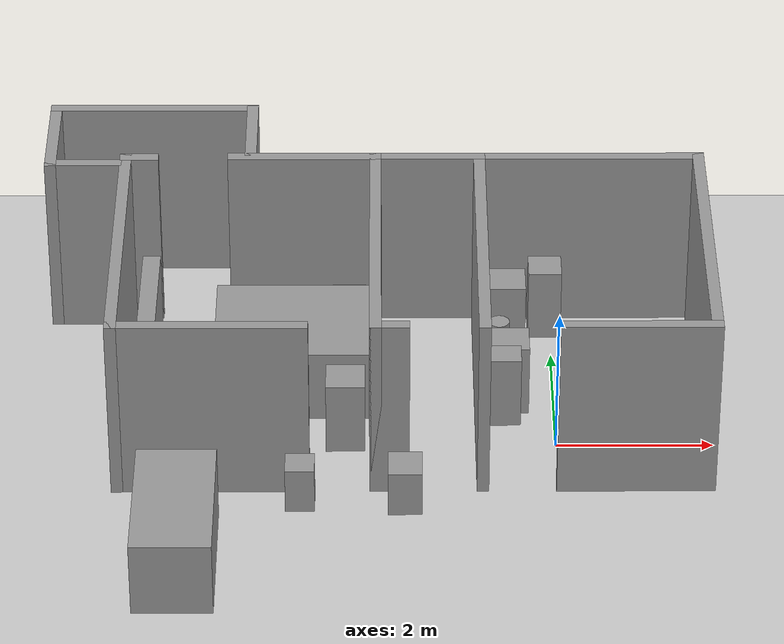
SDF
<sdf version="1.6">
 <world name="default">
  <model name="ground_plane">
   <static>1</static>
   <link name="link">
    <collision name="collision">
     <geometry><plane><normal>0 0 1</normal><size>100 100</size></plane></geometry>
     <surface><friction><ode><mu>100</mu><mu2>50</mu2></ode></friction></surface>
    </collision>
    <visual name="visual">
     <cast_shadows>0</cast_shadows>
     <geometry><plane><normal>0 0 1</normal><size>100 100</size></plane></geometry>
     <material>
      <script><uri>file://media/materials/scripts/gazebo.material</uri><name>Gazebo/Grey</name></script>
     </material>
    </visual>
   </link>
  </model>
  <model name="cma_escritorio">
   <pose>-1.83039 1.03024 0 0 -0 0</pose>
   <link name="Wall_11">
    <collision name="Wall_11_Collision">
     <geometry><box><size>2 0.15 2.5</size></box></geometry>
     <pose>0 0 1.25 0 -0 0</pose>
    </collision>
    <visual name="Wall_11_Visual">
     <pose>0 0 1.25 0 -0 0</pose>
     <geometry><box><size>2 0.15 2.5</size></box></geometry>
     <material>
      <script><uri>file://media/materials/scripts/gazebo.material</uri><name>Gazebo/Grey</name></script>
      <ambient>1 1 1 1</ambient>
     </material>
    </visual>
    <pose>-1.4 1.93 0 0 -0 3.14159</pose>
   </link>
   <link name="Wall_2">
    <collision name="Wall_2_Collision">
     <geometry><box><size>4 0.15 2.5</size></box></geometry>
     <pose>0 0 1.25 0 -0 0</pose>
    </collision>
    <visual name="Wall_2_Visual">
     <pose>0 0 1.25 0 -0 0</pose>
     <geometry><box><size>4 0.15 2.5</size></box></geometry>
     <material>
      <script><uri>file://media/materials/scripts/gazebo.material</uri><name>Gazebo/Grey</name></script>
      <ambient>1 1 1 1</ambient>
     </material>
    </visual>
    <pose>0.875 0.005 0 0 -0 1.5708</pose>
   </link>
   <link name="Wall_25">
    <collision name="Wall_25_Collision">
     <geometry><box><size>2.5 0.15 2.5</size></box></geometry>
     <pose>0 0 1.25 0 -0 0</pose>
    </collision>
    <visual name="Wall_25_Visual">
     <pose>0 0 1.25 0 -0 0</pose>
     <geometry><box><size>2.5 0.15 2.5</size></box></geometry>
     <material>
      <script><uri>file://media/materials/scripts/gazebo.material</uri><name>Gazebo/Grey</name></script>
      <ambient>1 1 1 1</ambient>
     </material>
    </visual>
    <pose>-2.55 -1.93 0 0 -0 3.14159</pose>
   </link>
   <link name="Wall_26">
    <collision name="Wall_26_Collision">
     <geometry><box><size>4 0.15 2.5</size></box></geometry>
     <pose>0 0 1.25 0 -0 0</pose>
    </collision>
    <visual name="Wall_26_Visual">
     <pose>0 0 1.25 0 -0 0</pose>
     <geometry><box><size>4 0.15 2.5</size></box></geometry>
     <material>
      <script><uri>file://media/materials/scripts/gazebo.material</uri><name>Gazebo/Grey</name></script>
      <ambient>1 1 1 1</ambient>
     </material>
    </visual>
    <pose>-3.725 -0.005 0 0 -0 1.5708</pose>
   </link>
   <link name="Wall_27">
    <collision name="Wall_27_Collision">
     <geometry><box><size>0.5 0.15 2.5</size></box></geometry>
     <pose>0 0 1.25 0 -0 0</pose>
    </collision>
    <visual name="Wall_27_Visual">
     <pose>0 0 1.25 0 -0 0</pose>
     <geometry><box><size>0.5 0.15 2.5</size></box></geometry>
     <material>
      <script><uri>file://media/materials/scripts/gazebo.material</uri><name>Gazebo/Grey</name></script>
      <ambient>1 1 1 1</ambient>
     </material>
    </visual>
    <pose>-3.55 1.92 0 0 -0 0</pose>
   </link>
   <link name="Wall_3">
    <collision name="Wall_3_Collision">
     <geometry><box><size>3 0.15 2.5</size></box></geometry>
     <pose>0 0 1.25 0 -0 0</pose>
    </collision>
    <visual name="Wall_3_Visual">
     <pose>0 0 1.25 0 -0 0</pose>
     <geometry><box><size>3 0.15 2.5</size></box></geometry>
     <material>
      <script><uri>file://media/materials/scripts/gazebo.material</uri><name>Gazebo/Grey</name></script>
      <ambient>1 1 1 1</ambient>
     </material>
    </visual>
    <pose>2.3 1.93 0 0 -0 0</pose>
   </link>
   <link name="Wall_4">
    <collision name="Wall_4_Collision">
     <geometry><box><size>4 0.15 2.5</size></box></geometry>
     <pose>0 0 1.25 0 -0 0</pose>
    </collision>
    <visual name="Wall_4_Visual">
     <pose>0 0 1.25 0 -0 0</pose>
     <geometry><box><size>4 0.15 2.5</size></box></geometry>
     <material>
      <script><uri>file://media/materials/scripts/gazebo.material</uri><name>Gazebo/Grey</name></script>
      <ambient>1 1 1 1</ambient>
     </material>
    </visual>
    <pose>3.725 0.005 0 0 0 -1.5708</pose>
   </link>
   <link name="Wall_5">
    <collision name="Wall_5_Collision">
     <geometry><box><size>2 0.15 2.5</size></box></geometry>
     <pose>0 0 1.25 0 -0 0</pose>
    </collision>
    <visual name="Wall_5_Visual">
     <pose>0 0 1.25 0 -0 0</pose>
     <geometry><box><size>2 0.15 2.5</size></box></geometry>
     <material>
      <script><uri>file://media/materials/scripts/gazebo.material</uri><name>Gazebo/Grey</name></script>
      <ambient>1 1 1 1</ambient>
     </material>
    </visual>
    <pose>2.8 -1.92 0 0 -0 3.14159</pose>
   </link>
   <link name="Wall_7">
    <collision name="Wall_7_Collision">
     <geometry><box><size>1.5 0.15 2.5</size></box></geometry>
     <pose>0 0 1.25 0 -0 0</pose>
    </collision>
    <visual name="Wall_7_Visual">
     <pose>0 0 1.25 0 -0 0</pose>
     <geometry><box><size>1.5 0.15 2.5</size></box></geometry>
     <material>
      <script><uri>file://media/materials/scripts/gazebo.material</uri><name>Gazebo/Grey</name></script>
      <ambient>1 1 1 1</ambient>
     </material>
    </visual>
    <pose>0.2 1.93 0 0 -0 3.14159</pose>
   </link>
   <link name="Wall_8">
    <collision name="Wall_8_Collision">
     <geometry><box><size>4 0.15 2.5</size></box></geometry>
     <pose>0 0 1.25 0 -0 0</pose>
    </collision>
    <visual name="Wall_8_Visual">
     <pose>0 0 1.25 0 -0 0</pose>
     <geometry><box><size>4 0.15 2.5</size></box></geometry>
     <material>
      <script><uri>file://media/materials/scripts/gazebo.material</uri><name>Gazebo/Grey</name></script>
      <ambient>1 1 1 1</ambient>
     </material>
    </visual>
    <pose>-0.475 0.005 0 0 0 -1.5708</pose>
   </link>
   <link name="Wall_9">
    <collision name="Wall_9_Collision">
     <geometry><box><size>0.5 0.15 2.5</size></box></geometry>
     <pose>0 0 1.25 0 -0 0</pose>
    </collision>
    <visual name="Wall_9_Visual">
     <pose>0 0 1.25 0 -0 0</pose>
     <geometry><box><size>0.5 0.15 2.5</size></box></geometry>
     <material>
      <script><uri>file://media/materials/scripts/gazebo.material</uri><name>Gazebo/Grey</name></script>
      <ambient>1 1 1 1</ambient>
     </material>
    </visual>
    <pose>-0.3 -1.92 0 0 -0 0</pose>
   </link>
   <static>1</static>
  </model>
  <model name="cma_banheiro">
   <pose>-5.22928 3.4871 0 0 -0 0</pose>
   <link name="Wall_0">
    <collision name="Wall_0_Collision">
     <geometry><box><size>1 0.15 2.5</size></box></geometry>
     <pose>0 0 1.25 0 -0 0</pose>
    </collision>
    <visual name="Wall_0_Visual">
     <pose>0 0 1.25 0 -0 0</pose>
     <geometry><box><size>1 0.15 2.5</size></box></geometry>
     <material>
      <script><uri>file://media/materials/scripts/gazebo.material</uri><name>Gazebo/Grey</name></script>
      <ambient>1 1 1 1</ambient>
     </material>
    </visual>
    <pose>-0.875 -0.675 0 0 -0 3.14159</pose>
   </link>
   <link name="Wall_1">
    <collision name="Wall_1_Collision">
     <geometry><box><size>1.5 0.15 2.5</size></box></geometry>
     <pose>0 0 1.25 0 -0 0</pose>
    </collision>
    <visual name="Wall_1_Visual">
     <pose>0 0 1.25 0 -0 0</pose>
     <geometry><box><size>1.5 0.15 2.5</size></box></geometry>
     <material>
      <script><uri>file://media/materials/scripts/gazebo.material</uri><name>Gazebo/Grey</name></script>
      <ambient>1 1 1 1</ambient>
     </material>
    </visual>
    <pose>-1.3 0 0 0 -0 1.5708</pose>
   </link>
   <link name="Wall_2">
    <collision name="Wall_2_Collision">
     <geometry><box><size>2.75 0.15 2.5</size></box></geometry>
     <pose>0 0 1.25 0 -0 0</pose>
    </collision>
    <visual name="Wall_2_Visual">
     <pose>0 0 1.25 0 -0 0</pose>
     <geometry><box><size>2.75 0.15 2.5</size></box></geometry>
     <material>
      <script><uri>file://media/materials/scripts/gazebo.material</uri><name>Gazebo/Grey</name></script>
      <ambient>1 1 1 1</ambient>
     </material>
    </visual>
    <pose>0 0.675 0 0 -0 0</pose>
   </link>
   <link name="Wall_4">
    <collision name="Wall_4_Collision">
     <geometry><box><size>1.25 0.15 2.5</size></box></geometry>
     <pose>0 0 1.25 0 -0 0</pose>
    </collision>
    <visual name="Wall_4_Visual">
     <pose>0 0 1.25 0 -0 0</pose>
     <geometry><box><size>1.25 0.15 2.5</size></box></geometry>
     <material>
      <script><uri>file://media/materials/scripts/gazebo.material</uri><name>Gazebo/Grey</name></script>
      <ambient>1 1 1 1</ambient>
     </material>
    </visual>
    <pose>1.3 0.125 0 0 0 -1.5708</pose>
   </link>
   <static>1</static>
  </model>
  <model name="cma_gaveteiro_pequeno_0">
   <link name="link_0">
    <pose>0.256174 1.25055 0.5 0 -0 0</pose>
    <inertial>
     <mass>0.187186</mass>
     <inertia>
      <ixx>0.01851</ixx>
      <ixy>0</ixy>
      <ixz>0</ixz>
      <iyy>0.0185276</iyy>
      <iyz>0</iyz>
      <izz>0.00583981</izz>
     </inertia>
    </inertial>
    <visual name="visual">
     <geometry><box><size>0.433317 0.432002 1</size></box></geometry>
     <material>
      <lighting>1</lighting>
      <script><uri>file://media/materials/scripts/gazebo.material</uri><name>Gazebo/Grey</name></script>
      <ambient>0.3 0.3 0.3 1</ambient>
      <diffuse>0.7 0.7 0.7 1</diffuse>
      <specular>0.01 0.01 0.01 1</specular>
      <emissive>0 0 0 1</emissive>
     </material>
    </visual>
    <collision name="collision">
     <geometry><box><size>0.433317 0.432002 1</size></box></geometry>
     <surface>
      <friction>
       <ode><mu>1</mu><mu2>1</mu2><fdir1>0 0 0</fdir1><slip1>0</slip1><slip2>0</slip2></ode>
       <torsional>
        <coefficient>1</coefficient>
        <patch_radius>0</patch_radius>
        <surface_radius>0</surface_radius>
        <use_patch_radius>1</use_patch_radius>
        <ode><slip>0</slip></ode>
       </torsional>
      </friction>
      <bounce><restitution_coefficient>0</restitution_coefficient><threshold>1e+06</threshold></bounce>
      <contact>
       <collide_without_contact>0</collide_without_contact>
       <collide_without_contact_bitmask>1</collide_without_contact_bitmask>
       <collide_bitmask>1</collide_bitmask>
       <ode>
        <soft_cfm>0</soft_cfm>
        <soft_erp>0.2</soft_erp>
        <kp>1e+13</kp>
        <kd>1</kd>
        <max_vel>0.01</max_vel>
        <min_depth>0</min_depth>
       </ode>
       <bullet>
        <split_impulse>1</split_impulse>
        <split_impulse_penetration_threshold>-0.01</split_impulse_penetration_threshold>
        <soft_cfm>0</soft_cfm>
        <soft_erp>0.2</soft_erp>
        <kp>1e+13</kp>
        <kd>1</kd>
       </bullet>
      </contact>
     </surface>
    </collision>
   </link>
   <static>0</static>
   <pose>-0.336048 1.39511 -1e-06 1e-06 -3e-06 -5.7e-05</pose>
  </model>
  <model name="cma_gaveteiro">
   <link name="link_0">
    <pose>-0 4e-06 0 0 -0 0</pose>
    <inertial>
     <mass>0.245086</mass>
     <inertia>
      <ixx>0.025418</ixx>
      <ixy>0</ixy>
      <ixz>0</ixz>
      <iyy>0.0254411</iyy>
      <iyz>0</iyz>
      <izz>0.0100113</izz>
     </inertia>
    </inertial>
    <visual name="visual">
     <geometry><box><size>0.495657 0.494491 1</size></box></geometry>
     <material>
      <lighting>1</lighting>
      <script><uri>file://media/materials/scripts/gazebo.material</uri><name>Gazebo/Grey</name></script>
      <ambient>0.3 0.3 0.3 1</ambient>
      <diffuse>0.7 0.7 0.7 1</diffuse>
      <specular>0.01 0.01 0.01 1</specular>
      <emissive>0 0 0 1</emissive>
     </material>
    </visual>
    <collision name="collision">
     <geometry><box><size>0.495657 0.494491 1</size></box></geometry>
     <surface>
      <friction>
       <ode><mu>1</mu><mu2>1</mu2><fdir1>0 0 0</fdir1><slip1>0</slip1><slip2>0</slip2></ode>
       <torsional>
        <coefficient>1</coefficient>
        <patch_radius>0</patch_radius>
        <surface_radius>0</surface_radius>
        <use_patch_radius>1</use_patch_radius>
        <ode><slip>0</slip></ode>
       </torsional>
      </friction>
      <bounce><restitution_coefficient>0</restitution_coefficient><threshold>1e+06</threshold></bounce>
      <contact>
       <collide_without_contact>0</collide_without_contact>
       <collide_without_contact_bitmask>1</collide_without_contact_bitmask>
       <collide_bitmask>1</collide_bitmask>
       <ode>
        <soft_cfm>0</soft_cfm>
        <soft_erp>0.2</soft_erp>
        <kp>1e+13</kp>
        <kd>1</kd>
        <max_vel>0.01</max_vel>
        <min_depth>0</min_depth>
       </ode>
       <bullet>
        <split_impulse>1</split_impulse>
        <split_impulse_penetration_threshold>-0.01</split_impulse_penetration_threshold>
        <soft_cfm>0</soft_cfm>
        <soft_erp>0.2</soft_erp>
        <kp>1e+13</kp>
        <kd>1</kd>
       </bullet>
      </contact>
     </surface>
    </collision>
   </link>
   <static>0</static>
   <pose>-0.591995 2.32621 0.499996 -6e-06 -5e-06 0.000353</pose>
  </model>
  <model name="cma_gaveteiro_0">
   <link name="link_0">
    <pose>-0 4e-06 0 0 -0 0</pose>
    <inertial>
     <mass>0.245086</mass>
     <inertia>
      <ixx>0.025418</ixx>
      <ixy>0</ixy>
      <ixz>0</ixz>
      <iyy>0.0254411</iyy>
      <iyz>0</iyz>
      <izz>0.0100113</izz>
     </inertia>
    </inertial>
    <visual name="visual">
     <geometry><box><size>0.495657 0.494491 1</size></box></geometry>
     <material>
      <lighting>1</lighting>
      <script><uri>file://media/materials/scripts/gazebo.material</uri><name>Gazebo/Grey</name></script>
      <ambient>0.3 0.3 0.3 1</ambient>
      <diffuse>0.7 0.7 0.7 1</diffuse>
      <specular>0.01 0.01 0.01 1</specular>
      <emissive>0 0 0 1</emissive>
     </material>
    </visual>
    <collision name="collision">
     <geometry><box><size>0.495657 0.494491 1</size></box></geometry>
     <surface>
      <friction>
       <ode><mu>1</mu><mu2>1</mu2><fdir1>0 0 0</fdir1><slip1>0</slip1><slip2>0</slip2></ode>
       <torsional>
        <coefficient>1</coefficient>
        <patch_radius>0</patch_radius>
        <surface_radius>0</surface_radius>
        <use_patch_radius>1</use_patch_radius>
        <ode><slip>0</slip></ode>
       </torsional>
      </friction>
      <bounce><restitution_coefficient>0</restitution_coefficient><threshold>1e+06</threshold></bounce>
      <contact>
       <collide_without_contact>0</collide_without_contact>
       <collide_without_contact_bitmask>1</collide_without_contact_bitmask>
       <collide_bitmask>1</collide_bitmask>
       <ode>
        <soft_cfm>0</soft_cfm>
        <soft_erp>0.2</soft_erp>
        <kp>1e+13</kp>
        <kd>1</kd>
        <max_vel>0.01</max_vel>
        <min_depth>0</min_depth>
       </ode>
       <bullet>
        <split_impulse>1</split_impulse>
        <split_impulse_penetration_threshold>-0.01</split_impulse_penetration_threshold>
        <soft_cfm>0</soft_cfm>
        <soft_erp>0.2</soft_erp>
        <kp>1e+13</kp>
        <kd>1</kd>
       </bullet>
      </contact>
     </surface>
    </collision>
   </link>
   <static>0</static>
   <pose>-0.581078 0.950883 0.5 0 -0 0.003045</pose>
  </model>
  <model name="cma_lixo_0">
   <link name="link_1">
    <pose>0.882962 1.81586 0.5 0 -0 0</pose>
    <inertial>
     <mass>0.0687644</mass>
     <inertia>
      <ixx>0.00602588</ixx>
      <ixy>0</ixy>
      <ixz>0</ixz>
      <iyy>0.00602588</iyy>
      <iyz>0</iyz>
      <izz>0.000591068</izz>
     </inertia>
    </inertial>
    <visual name="visual">
     <geometry><cylinder><radius>0.131112</radius><length>1</length></cylinder></geometry>
     <material>
      <lighting>1</lighting>
      <script><uri>file://media/materials/scripts/gazebo.material</uri><name>Gazebo/Grey</name></script>
      <ambient>0.3 0.3 0.3 1</ambient>
      <diffuse>0.7 0.7 0.7 1</diffuse>
      <specular>0.01 0.01 0.01 1</specular>
      <emissive>0 0 0 1</emissive>
     </material>
    </visual>
    <collision name="collision">
     <geometry><cylinder><radius>0.131112</radius><length>1</length></cylinder></geometry>
     <surface>
      <friction>
       <ode><mu>1</mu><mu2>1</mu2><fdir1>0 0 0</fdir1><slip1>0</slip1><slip2>0</slip2></ode>
       <torsional>
        <coefficient>1</coefficient>
        <patch_radius>0</patch_radius>
        <surface_radius>0</surface_radius>
        <use_patch_radius>1</use_patch_radius>
        <ode><slip>0</slip></ode>
       </torsional>
      </friction>
      <bounce><restitution_coefficient>0</restitution_coefficient><threshold>1e+06</threshold></bounce>
      <contact>
       <collide_without_contact>0</collide_without_contact>
       <collide_without_contact_bitmask>1</collide_without_contact_bitmask>
       <collide_bitmask>1</collide_bitmask>
       <ode>
        <soft_cfm>0</soft_cfm>
        <soft_erp>0.2</soft_erp>
        <kp>1e+13</kp>
        <kd>1</kd>
        <max_vel>0.01</max_vel>
        <min_depth>0</min_depth>
       </ode>
       <bullet>
        <split_impulse>1</split_impulse>
        <split_impulse_penetration_threshold>-0.01</split_impulse_penetration_threshold>
        <soft_cfm>0</soft_cfm>
        <soft_erp>0.2</soft_erp>
        <kp>1e+13</kp>
        <kd>1</kd>
       </bullet>
      </contact>
     </surface>
    </collision>
   </link>
   <static>0</static>
   <pose>-1.59037 -0.469415 0 0 -0 0.000705</pose>
  </model>
  <model name="cma_sofa2">
   <link name="link_0">
    <pose>-4.668 -2.00601 0.5 0 -0 0</pose>
    <inertial>
     <mass>1.98683</mass>
     <inertia>
      <ixx>0.819149</ixx>
      <ixy>0</ixy>
      <ixz>0</ixz>
      <iyy>0.331138</iyy>
      <iyz>0</iyz>
      <izz>0.819149</izz>
     </inertia>
    </inertial>
    <visual name="visual">
     <geometry><box><size>1 1.98682 1</size></box></geometry>
     <material>
      <lighting>1</lighting>
      <script><uri>file://media/materials/scripts/gazebo.material</uri><name>Gazebo/Grey</name></script>
      <ambient>0.3 0.3 0.3 1</ambient>
      <diffuse>0.7 0.7 0.7 1</diffuse>
      <specular>0.01 0.01 0.01 1</specular>
      <emissive>0 0 0 1</emissive>
     </material>
    </visual>
    <collision name="collision">
     <geometry><box><size>1 1.98682 1</size></box></geometry>
     <surface>
      <friction>
       <ode><mu>1</mu><mu2>1</mu2><fdir1>0 0 0</fdir1><slip1>0</slip1><slip2>0</slip2></ode>
       <torsional>
        <coefficient>1</coefficient>
        <patch_radius>0</patch_radius>
        <surface_radius>0</surface_radius>
        <use_patch_radius>1</use_patch_radius>
        <ode><slip>0</slip></ode>
       </torsional>
      </friction>
      <bounce><restitution_coefficient>0</restitution_coefficient><threshold>1e+06</threshold></bounce>
      <contact>
       <collide_without_contact>0</collide_without_contact>
       <collide_without_contact_bitmask>1</collide_without_contact_bitmask>
       <collide_bitmask>1</collide_bitmask>
       <ode>
        <soft_cfm>0</soft_cfm>
        <soft_erp>0.2</soft_erp>
        <kp>1e+13</kp>
        <kd>1</kd>
        <max_vel>0.01</max_vel>
        <min_depth>0</min_depth>
       </ode>
       <bullet>
        <split_impulse>1</split_impulse>
        <split_impulse_penetration_threshold>-0.01</split_impulse_penetration_threshold>
        <soft_cfm>0</soft_cfm>
        <soft_erp>0.2</soft_erp>
        <kp>1e+13</kp>
        <kd>1</kd>
       </bullet>
      </contact>
     </surface>
    </collision>
   </link>
   <static>0</static>
   <pose>-0.095327 -0.407654 0 0 -0 1e-06</pose>
  </model>
  <model name="cma_bau_s">
   <link name="link_1">
    <pose>0.109594 0.272293 0 0 -0 0</pose>
    <inertial>
     <mass>0.125479</mass>
     <inertia>
      <ixx>0.00641943</ixx>
      <ixy>0</ixy>
      <ixz>0</ixz>
      <iyy>0.0059754</iyy>
      <iyz>0</iyz>
      <izz>0.00422085</izz>
     </inertia>
    </inertial>
    <visual name="visual">
     <geometry><box><size>0.424964 0.472283 0.625118</size></box></geometry>
     <material>
      <lighting>1</lighting>
      <script><uri>file://media/materials/scripts/gazebo.material</uri><name>Gazebo/Grey</name></script>
      <ambient>0.3 0.3 0.3 1</ambient>
      <diffuse>0.7 0.7 0.7 1</diffuse>
      <specular>0.01 0.01 0.01 1</specular>
      <emissive>0 0 0 1</emissive>
     </material>
    </visual>
    <collision name="collision">
     <geometry><box><size>0.424964 0.472283 0.625118</size></box></geometry>
     <surface>
      <friction>
       <ode><mu>1</mu><mu2>1</mu2><fdir1>0 0 0</fdir1><slip1>0</slip1><slip2>0</slip2></ode>
       <torsional>
        <coefficient>1</coefficient>
        <patch_radius>0</patch_radius>
        <surface_radius>0</surface_radius>
        <use_patch_radius>1</use_patch_radius>
        <ode><slip>0</slip></ode>
       </torsional>
      </friction>
      <bounce><restitution_coefficient>0</restitution_coefficient><threshold>1e+06</threshold></bounce>
      <contact>
       <collide_without_contact>0</collide_without_contact>
       <collide_without_contact_bitmask>1</collide_without_contact_bitmask>
       <collide_bitmask>1</collide_bitmask>
       <ode>
        <soft_cfm>0</soft_cfm>
        <soft_erp>0.2</soft_erp>
        <kp>1e+13</kp>
        <kd>1</kd>
        <max_vel>0.01</max_vel>
        <min_depth>0</min_depth>
       </ode>
       <bullet>
        <split_impulse>1</split_impulse>
        <split_impulse_penetration_threshold>-0.01</split_impulse_penetration_threshold>
        <soft_cfm>0</soft_cfm>
        <soft_erp>0.2</soft_erp>
        <kp>1e+13</kp>
        <kd>1</kd>
       </bullet>
      </contact>
     </surface>
    </collision>
   </link>
   <static>0</static>
   <pose>-2.04296 -1.4857 0.312553 9e-06 8e-06 1e-06</pose>
  </model>
  <model name="cma_apoio_s">
   <link name="link_1">
    <pose>-1.9376 -3.46551 0.5 0 -0 0</pose>
    <inertial>
     <mass>0.0878463</mass>
     <inertia>
      <ixx>0.00392696</ixx>
      <ixy>0</ixy>
      <ixz>0</ixz>
      <iyy>0.00385356</iyy>
      <iyz>0</iyz>
      <izz>0.0020587</izz>
     </inertia>
    </inertial>
    <visual name="visual">
     <geometry><box><size>0.368223 0.381592 0.625118</size></box></geometry>
     <material>
      <lighting>1</lighting>
      <script><uri>file://media/materials/scripts/gazebo.material</uri><name>Gazebo/Grey</name></script>
      <ambient>0.3 0.3 0.3 1</ambient>
      <diffuse>0.7 0.7 0.7 1</diffuse>
      <specular>0.01 0.01 0.01 1</specular>
      <emissive>0 0 0 1</emissive>
     </material>
    </visual>
    <collision name="collision">
     <geometry><box><size>0.368223 0.381592 0.625118</size></box></geometry>
     <surface>
      <friction>
       <ode><mu>1</mu><mu2>1</mu2><fdir1>0 0 0</fdir1><slip1>0</slip1><slip2>0</slip2></ode>
       <torsional>
        <coefficient>1</coefficient>
        <patch_radius>0</patch_radius>
        <surface_radius>0</surface_radius>
        <use_patch_radius>1</use_patch_radius>
        <ode><slip>0</slip></ode>
       </torsional>
      </friction>
      <bounce><restitution_coefficient>0</restitution_coefficient><threshold>1e+06</threshold></bounce>
      <contact>
       <collide_without_contact>0</collide_without_contact>
       <collide_without_contact_bitmask>1</collide_without_contact_bitmask>
       <collide_bitmask>1</collide_bitmask>
       <ode>
        <soft_cfm>0</soft_cfm>
        <soft_erp>0.2</soft_erp>
        <kp>1e+13</kp>
        <kd>1</kd>
        <max_vel>0.01</max_vel>
        <min_depth>0</min_depth>
       </ode>
       <bullet>
        <split_impulse>1</split_impulse>
        <split_impulse_penetration_threshold>-0.01</split_impulse_penetration_threshold>
        <soft_cfm>0</soft_cfm>
        <soft_erp>0.2</soft_erp>
        <kp>1e+13</kp>
        <kd>1</kd>
       </bullet>
      </contact>
     </surface>
    </collision>
   </link>
   <static>0</static>
   <pose>-1.30872 2.2708 -0.187499 -9e-06 1.2e-05 -0.000924</pose>
  </model>
  <model name="cma_cama_c_0">
   <link name="link_0">
    <pose>5e-06 -4e-06 0 0 -0 0</pose>
    <inertial>
     <mass>3.18358</mass>
     <inertia><ixx>0.934862</ixx><ixy>0</ixy><ixz>0</ixz><iyy>1.33069</iyy><iyz>0</iyz><izz>1.73496</izz></inertia>
    </inertial>
    <visual name="visual">
     <geometry><box><size>2.00394 1.58866 1</size></box></geometry>
     <material>
      <lighting>1</lighting>
      <script><uri>file://media/materials/scripts/gazebo.material</uri><name>Gazebo/Grey</name></script>
      <ambient>0.3 0.3 0.3 1</ambient>
      <diffuse>0.7 0.7 0.7 1</diffuse>
      <specular>0.01 0.01 0.01 1</specular>
      <emissive>0 0 0 1</emissive>
     </material>
    </visual>
    <collision name="collision">
     <geometry><box><size>2.00394 1.58866 1</size></box></geometry>
     <surface>
      <friction>
       <ode><mu>1</mu><mu2>1</mu2><fdir1>0 0 0</fdir1><slip1>0</slip1><slip2>0</slip2></ode>
       <torsional>
        <coefficient>1</coefficient>
        <patch_radius>0</patch_radius>
        <surface_radius>0</surface_radius>
        <use_patch_radius>1</use_patch_radius>
        <ode><slip>0</slip></ode>
       </torsional>
      </friction>
      <bounce><restitution_coefficient>0</restitution_coefficient><threshold>1e+06</threshold></bounce>
      <contact>
       <collide_without_contact>0</collide_without_contact>
       <collide_without_contact_bitmask>1</collide_without_contact_bitmask>
       <collide_bitmask>1</collide_bitmask>
       <ode>
        <soft_cfm>0</soft_cfm>
        <soft_erp>0.2</soft_erp>
        <kp>1e+13</kp>
        <kd>1</kd>
        <max_vel>0.01</max_vel>
        <min_depth>0</min_depth>
       </ode>
       <bullet>
        <split_impulse>1</split_impulse>
        <split_impulse_penetration_threshold>-0.01</split_impulse_penetration_threshold>
        <soft_cfm>0</soft_cfm>
        <soft_erp>0.2</soft_erp>
        <kp>1e+13</kp>
        <kd>1</kd>
       </bullet>
      </contact>
     </surface>
    </collision>
   </link>
   <static>0</static>
   <pose>-3.37123 1.38787 0.5 0 -0 0</pose>
  </model>
  <model name="cma_bau_s_0">
   <link name="link_1">
    <pose>0.109594 0.272293 0 0 -0 0</pose>
    <inertial>
     <mass>0.125479</mass>
     <inertia>
      <ixx>0.00641943</ixx>
      <ixy>0</ixy>
      <ixz>0</ixz>
      <iyy>0.0059754</iyy>
      <iyz>0</iyz>
      <izz>0.00422085</izz>
     </inertia>
    </inertial>
    <visual name="visual">
     <geometry><box><size>0.424964 0.472283 0.625118</size></box></geometry>
     <material>
      <lighting>1</lighting>
      <script><uri>file://media/materials/scripts/gazebo.material</uri><name>Gazebo/Grey</name></script>
      <ambient>0.3 0.3 0.3 1</ambient>
      <diffuse>0.7 0.7 0.7 1</diffuse>
      <specular>0.01 0.01 0.01 1</specular>
      <emissive>0 0 0 1</emissive>
     </material>
    </visual>
    <collision name="collision">
     <geometry><box><size>0.424964 0.472283 0.625118</size></box></geometry>
     <surface>
      <friction>
       <ode><mu>1</mu><mu2>1</mu2><fdir1>0 0 0</fdir1><slip1>0</slip1><slip2>0</slip2></ode>
       <torsional>
        <coefficient>1</coefficient>
        <patch_radius>0</patch_radius>
        <surface_radius>0</surface_radius>
        <use_patch_radius>1</use_patch_radius>
        <ode><slip>0</slip></ode>
       </torsional>
      </friction>
      <bounce><restitution_coefficient>0</restitution_coefficient><threshold>1e+06</threshold></bounce>
      <contact>
       <collide_without_contact>0</collide_without_contact>
       <collide_without_contact_bitmask>1</collide_without_contact_bitmask>
       <collide_bitmask>1</collide_bitmask>
       <ode>
        <soft_cfm>0</soft_cfm>
        <soft_erp>0.2</soft_erp>
        <kp>1e+13</kp>
        <kd>1</kd>
        <max_vel>0.01</max_vel>
        <min_depth>0</min_depth>
       </ode>
       <bullet>
        <split_impulse>1</split_impulse>
        <split_impulse_penetration_threshold>-0.01</split_impulse_penetration_threshold>
        <soft_cfm>0</soft_cfm>
        <soft_erp>0.2</soft_erp>
        <kp>1e+13</kp>
        <kd>1</kd>
       </bullet>
      </contact>
     </surface>
    </collision>
   </link>
   <static>0</static>
   <pose>-2.7651 2.24283 0.312559 0 -0 0</pose>
  </model>
  <model name="cma_gaveteiro_1">
   <link name="link_0">
    <pose>-0 4e-06 0 0 -0 0</pose>
    <inertial>
     <mass>0.245086</mass>
     <inertia>
      <ixx>0.025418</ixx>
      <ixy>0</ixy>
      <ixz>0</ixz>
      <iyy>0.0254411</iyy>
      <iyz>0</iyz>
      <izz>0.0100113</izz>
     </inertia>
    </inertial>
    <visual name="visual">
     <geometry><box><size>0.495657 0.494491 1</size></box></geometry>
     <material>
      <lighting>1</lighting>
      <script><uri>file://media/materials/scripts/gazebo.material</uri><name>Gazebo/Grey</name></script>
      <ambient>0.3 0.3 0.3 1</ambient>
      <diffuse>0.7 0.7 0.7 1</diffuse>
      <specular>0.01 0.01 0.01 1</specular>
      <emissive>0 0 0 1</emissive>
     </material>
    </visual>
    <collision name="collision">
     <geometry><box><size>0.495657 0.494491 1</size></box></geometry>
     <surface>
      <friction>
       <ode><mu>1</mu><mu2>1</mu2><fdir1>0 0 0</fdir1><slip1>0</slip1><slip2>0</slip2></ode>
       <torsional>
        <coefficient>1</coefficient>
        <patch_radius>0</patch_radius>
        <surface_radius>0</surface_radius>
        <use_patch_radius>1</use_patch_radius>
        <ode><slip>0</slip></ode>
       </torsional>
      </friction>
      <bounce><restitution_coefficient>0</restitution_coefficient><threshold>1e+06</threshold></bounce>
      <contact>
       <collide_without_contact>0</collide_without_contact>
       <collide_without_contact_bitmask>1</collide_without_contact_bitmask>
       <collide_bitmask>1</collide_bitmask>
       <ode>
        <soft_cfm>0</soft_cfm>
        <soft_erp>0.2</soft_erp>
        <kp>1e+13</kp>
        <kd>1</kd>
        <max_vel>0.01</max_vel>
        <min_depth>0</min_depth>
       </ode>
       <bullet>
        <split_impulse>1</split_impulse>
        <split_impulse_penetration_threshold>-0.01</split_impulse_penetration_threshold>
        <soft_cfm>0</soft_cfm>
        <soft_erp>0.2</soft_erp>
        <kp>1e+13</kp>
        <kd>1</kd>
       </bullet>
      </contact>
     </surface>
    </collision>
   </link>
   <static>0</static>
   <pose>-2.68859 0.131628 0.499997 -6e-06 5e-06 -4.9e-05</pose>
  </model>
  <model name="cma_armario_6">
   <link name="link_0">
    <pose>1.32157 0.885178 0.5 0 -0 0</pose>
    <inertial>
     <mass>0.402376</mass>
     <inertia>
      <ixx>0.0353686</ixx>
      <ixy>0</ixy>
      <ixz>0</ixz>
      <iyy>0.132616</iyy>
      <iyz>0</iyz>
      <izz>0.100922</izz>
     </inertia>
    </inertial>
    <visual name="visual">
     <geometry><box><size>1.71877 0.234069 1</size></box></geometry>
     <material>
      <lighting>1</lighting>
      <script><uri>file://media/materials/scripts/gazebo.material</uri><name>Gazebo/Grey</name></script>
      <ambient>0.3 0.3 0.3 1</ambient>
      <diffuse>0.7 0.7 0.7 1</diffuse>
      <specular>0.01 0.01 0.01 1</specular>
      <emissive>0 0 0 1</emissive>
     </material>
    </visual>
    <collision name="collision">
     <geometry><box><size>1.71877 0.234069 1</size></box></geometry>
     <surface>
      <friction>
       <ode><mu>1</mu><mu2>1</mu2><fdir1>0 0 0</fdir1><slip1>0</slip1><slip2>0</slip2></ode>
       <torsional>
        <coefficient>1</coefficient>
        <patch_radius>0</patch_radius>
        <surface_radius>0</surface_radius>
        <use_patch_radius>1</use_patch_radius>
        <ode><slip>0</slip></ode>
       </torsional>
      </friction>
      <bounce><restitution_coefficient>0</restitution_coefficient><threshold>1e+06</threshold></bounce>
      <contact>
       <collide_without_contact>0</collide_without_contact>
       <collide_without_contact_bitmask>1</collide_without_contact_bitmask>
       <collide_bitmask>1</collide_bitmask>
       <ode>
        <soft_cfm>0</soft_cfm>
        <soft_erp>0.2</soft_erp>
        <kp>1e+13</kp>
        <kd>1</kd>
        <max_vel>0.01</max_vel>
        <min_depth>0</min_depth>
       </ode>
       <bullet>
        <split_impulse>1</split_impulse>
        <split_impulse_penetration_threshold>-0.01</split_impulse_penetration_threshold>
        <soft_cfm>0</soft_cfm>
        <soft_erp>0.2</soft_erp>
        <kp>1e+13</kp>
        <kd>1</kd>
       </bullet>
      </contact>
     </surface>
    </collision>
   </link>
   <static>0</static>
   <pose>-4.38651 0.687659 0 0 -0 1.56611</pose>
  </model>
  <model name="cma_armario_7">
   <link name="link_0">
    <pose>1.32157 0.885178 0.5 0 -0 0</pose>
    <inertial>
     <mass>0.402376</mass>
     <inertia>
      <ixx>0.0353686</ixx>
      <ixy>0</ixy>
      <ixz>0</ixz>
      <iyy>0.132616</iyy>
      <iyz>0</iyz>
      <izz>0.100922</izz>
     </inertia>
    </inertial>
    <visual name="visual">
     <geometry><box><size>1.71877 0.234069 1</size></box></geometry>
     <material>
      <lighting>1</lighting>
      <script><uri>file://media/materials/scripts/gazebo.material</uri><name>Gazebo/Grey</name></script>
      <ambient>0.3 0.3 0.3 1</ambient>
      <diffuse>0.7 0.7 0.7 1</diffuse>
      <specular>0.01 0.01 0.01 1</specular>
      <emissive>0 0 0 1</emissive>
     </material>
    </visual>
    <collision name="collision">
     <geometry><box><size>1.71877 0.234069 1</size></box></geometry>
     <surface>
      <friction>
       <ode><mu>1</mu><mu2>1</mu2><fdir1>0 0 0</fdir1><slip1>0</slip1><slip2>0</slip2></ode>
       <torsional>
        <coefficient>1</coefficient>
        <patch_radius>0</patch_radius>
        <surface_radius>0</surface_radius>
        <use_patch_radius>1</use_patch_radius>
        <ode><slip>0</slip></ode>
       </torsional>
      </friction>
      <bounce><restitution_coefficient>0</restitution_coefficient><threshold>1e+06</threshold></bounce>
      <contact>
       <collide_without_contact>0</collide_without_contact>
       <collide_without_contact_bitmask>1</collide_without_contact_bitmask>
       <collide_bitmask>1</collide_bitmask>
       <ode>
        <soft_cfm>0</soft_cfm>
        <soft_erp>0.2</soft_erp>
        <kp>1e+13</kp>
        <kd>1</kd>
        <max_vel>0.01</max_vel>
        <min_depth>0</min_depth>
       </ode>
       <bullet>
        <split_impulse>1</split_impulse>
        <split_impulse_penetration_threshold>-0.01</split_impulse_penetration_threshold>
        <soft_cfm>0</soft_cfm>
        <soft_erp>0.2</soft_erp>
        <kp>1e+13</kp>
        <kd>1</kd>
       </bullet>
      </contact>
     </surface>
    </collision>
   </link>
   <static>0</static>
   <pose>-4.38561 -1.06537 0 0 -0 1.56893</pose>
  </model>
  <model name="cma_gaveteiro_pequeno_e">
   <link name="link_1">
    <pose>1e-06 -3e-06 0 0 -0 0</pose>
    <inertial>
     <mass>0.145532</mass>
     <inertia>
      <ixx>0.0136813</ixx>
      <ixy>0</ixy>
      <ixz>0</ixz>
      <iyy>0.0141327</iyy>
      <iyz>0</iyz>
      <izz>0.00355866</izz>
     </inertia>
    </inertial>
    <visual name="visual">
     <geometry><box><size>0.4066 0.357918 1</size></box></geometry>
     <material>
      <lighting>1</lighting>
      <script><uri>file://media/materials/scripts/gazebo.material</uri><name>Gazebo/Grey</name></script>
      <ambient>0.3 0.3 0.3 1</ambient>
      <diffuse>0.7 0.7 0.7 1</diffuse>
      <specular>0.01 0.01 0.01 1</specular>
      <emissive>0 0 0 1</emissive>
     </material>
    </visual>
    <collision name="collision">
     <geometry><box><size>0.4066 0.357918 1</size></box></geometry>
     <surface>
      <friction>
       <ode><mu>1</mu><mu2>1</mu2><fdir1>0 0 0</fdir1><slip1>0</slip1><slip2>0</slip2></ode>
       <torsional>
        <coefficient>1</coefficient>
        <patch_radius>0</patch_radius>
        <surface_radius>0</surface_radius>
        <use_patch_radius>1</use_patch_radius>
        <ode><slip>0</slip></ode>
       </torsional>
      </friction>
      <bounce><restitution_coefficient>0</restitution_coefficient><threshold>1e+06</threshold></bounce>
      <contact>
       <collide_without_contact>0</collide_without_contact>
       <collide_without_contact_bitmask>1</collide_without_contact_bitmask>
       <collide_bitmask>1</collide_bitmask>
       <ode>
        <soft_cfm>0</soft_cfm>
        <soft_erp>0.2</soft_erp>
        <kp>1e+13</kp>
        <kd>1</kd>
        <max_vel>0.01</max_vel>
        <min_depth>0</min_depth>
       </ode>
       <bullet>
        <split_impulse>1</split_impulse>
        <split_impulse_penetration_threshold>-0.01</split_impulse_penetration_threshold>
        <soft_cfm>0</soft_cfm>
        <soft_erp>0.2</soft_erp>
        <kp>1e+13</kp>
        <kd>1</kd>
       </bullet>
      </contact>
     </surface>
    </collision>
   </link>
   <static>0</static>
   <pose>-0.647809 0.62261 0.5 0 -0 0</pose>
  </model>
 </world>
</sdf>
